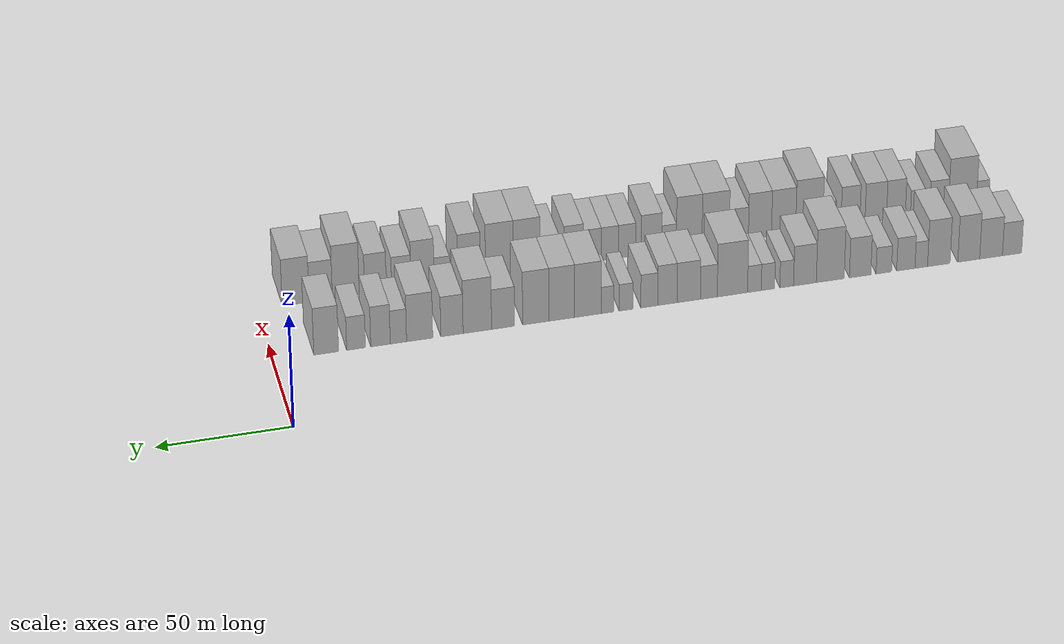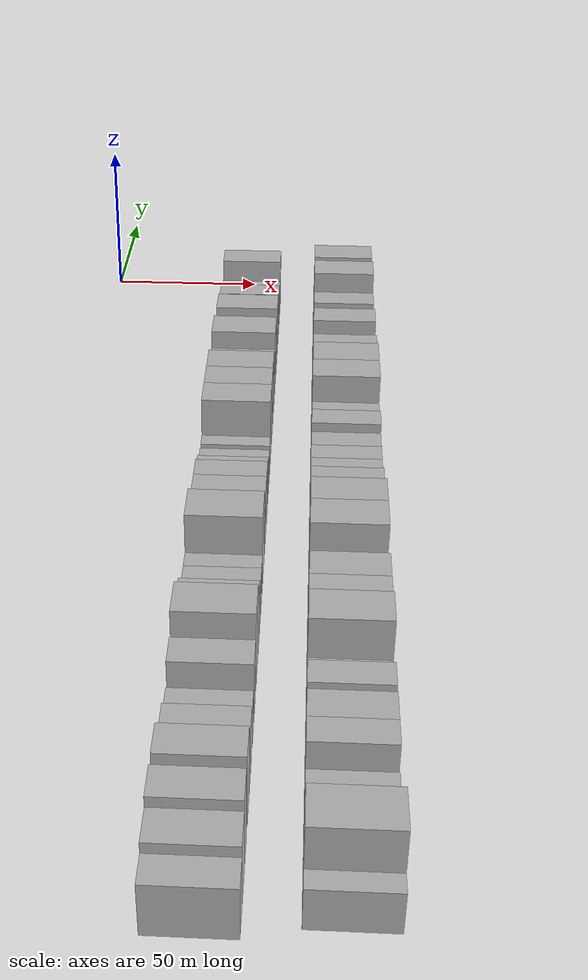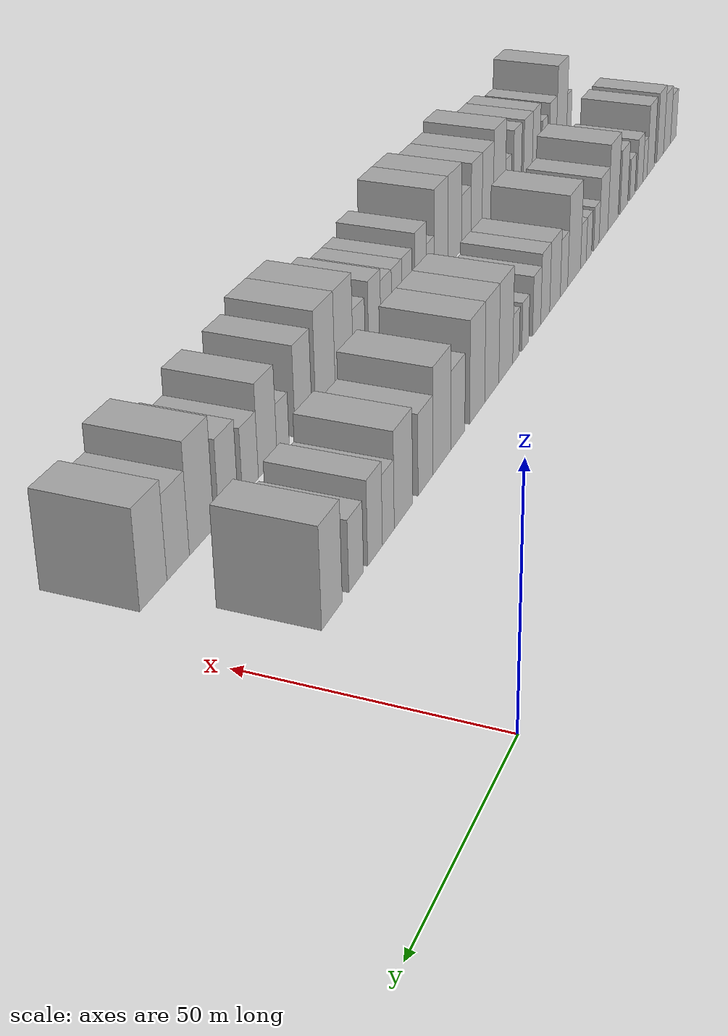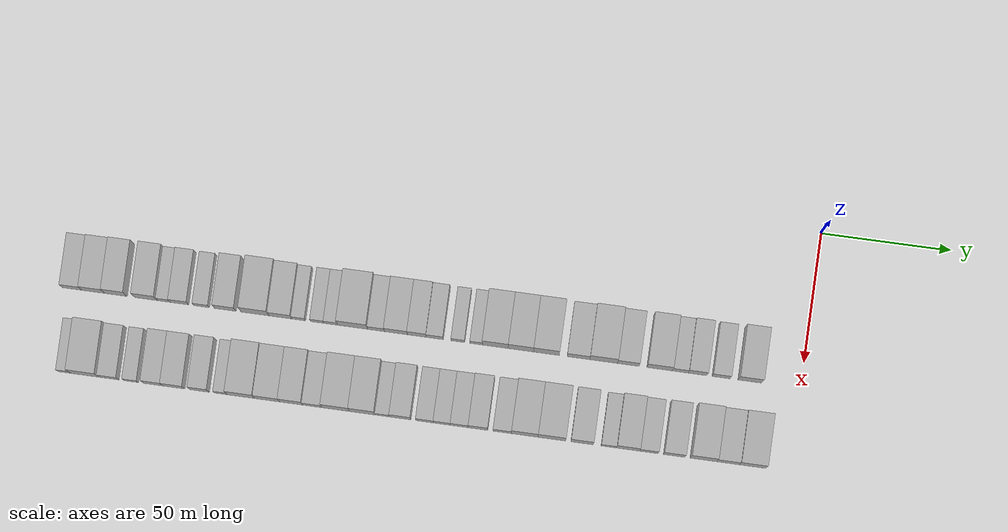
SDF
<sdf version="1.6">
 <world name="default">
  <model name="building_1">
   <static>1</static>
   <pose>50.0000 -280.2556 0 0.000000 0.000000 0.000000</pose>
   <link name="link">
    <pose>0 0 7.50 0 0 0</pose>
    <collision name="collision"><geometry><box><size>20.0000 7.4888 15.0000</size></box></geometry></collision>
    <visual name="visual">
     <cast_shadows>0</cast_shadows>
     <geometry><box><size>20.0000 7.4888 15.0000</size></box></geometry>
     <material>
      <script>
       <uri>model://HANNAS_wall/materials/scripts</uri>
       <uri>model://HANNAS_wall/materials/textures</uri>
       <name>vrc/HANNAS_wall</name>
      </script>
     </material>
    </visual>
   </link>
  </model>
  <model name="building_2">
   <static>1</static>
   <pose>50.0000 -272.0830 0 0.000000 0.000000 0.000000</pose>
   <link name="link">
    <pose>0 0 9.00 0 0 0</pose>
    <collision name="collision"><geometry><box><size>20.0000 8.8564 18.0000</size></box></geometry></collision>
    <visual name="visual">
     <cast_shadows>0</cast_shadows>
     <geometry><box><size>20.0000 8.8564 18.0000</size></box></geometry>
     <material>
      <script>
       <uri>model://HANNAS_wall/materials/scripts</uri>
       <uri>model://HANNAS_wall/materials/textures</uri>
       <name>vrc/HANNAS_wall</name>
      </script>
     </material>
    </visual>
   </link>
  </model>
  <model name="building_3">
   <static>1</static>
   <pose>50.0000 -263.3895 0 0.000000 0.000000 0.000000</pose>
   <link name="link">
    <pose>0 0 10.50 0 0 0</pose>
    <collision name="collision"><geometry><box><size>20.0000 8.5307 21.0000</size></box></geometry></collision>
    <visual name="visual">
     <cast_shadows>0</cast_shadows>
     <geometry><box><size>20.0000 8.5307 21.0000</size></box></geometry>
     <material>
      <script>
       <uri>model://HANNAS_wall/materials/scripts</uri>
       <uri>model://HANNAS_wall/materials/textures</uri>
       <name>vrc/HANNAS_wall</name>
      </script>
     </material>
    </visual>
   </link>
  </model>
  <model name="building_4">
   <static>1</static>
   <pose>50.0000 -251.7585 0 0.000000 0.000000 0.000000</pose>
   <link name="link">
    <pose>0 0 10.50 0 0 0</pose>
    <collision name="collision"><geometry><box><size>20.0000 8.7313 21.0000</size></box></geometry></collision>
    <visual name="visual">
     <cast_shadows>0</cast_shadows>
     <geometry><box><size>20.0000 8.7313 21.0000</size></box></geometry>
     <material>
      <script>
       <uri>model://HANNAS_wall/materials/scripts</uri>
       <uri>model://HANNAS_wall/materials/textures</uri>
       <name>vrc/HANNAS_wall</name>
      </script>
     </material>
    </visual>
   </link>
  </model>
  <model name="building_5">
   <static>1</static>
   <pose>50.0000 -244.9554 0 0.000000 0.000000 0.000000</pose>
   <link name="link">
    <pose>0 0 6.00 0 0 0</pose>
    <collision name="collision"><geometry><box><size>20.0000 4.8749 12.0000</size></box></geometry></collision>
    <visual name="visual">
     <cast_shadows>0</cast_shadows>
     <geometry><box><size>20.0000 4.8749 12.0000</size></box></geometry>
     <material>
      <script>
       <uri>model://HANNAS_wall/materials/scripts</uri>
       <uri>model://HANNAS_wall/materials/textures</uri>
       <name>vrc/HANNAS_wall</name>
      </script>
     </material>
    </visual>
   </link>
  </model>
  <model name="building_6">
   <static>1</static>
   <pose>50.0000 -238.9676 0 0.000000 0.000000 0.000000</pose>
   <link name="link">
    <pose>0 0 7.50 0 0 0</pose>
    <collision name="collision"><geometry><box><size>20.0000 7.1007 15.0000</size></box></geometry></collision>
    <visual name="visual">
     <cast_shadows>0</cast_shadows>
     <geometry><box><size>20.0000 7.1007 15.0000</size></box></geometry>
     <material>
      <script>
       <uri>model://HANNAS_wall/materials/scripts</uri>
       <uri>model://HANNAS_wall/materials/textures</uri>
       <name>vrc/HANNAS_wall</name>
      </script>
     </material>
    </visual>
   </link>
  </model>
  <model name="building_7">
   <static>1</static>
   <pose>50.0000 -230.4224 0 0.000000 0.000000 0.000000</pose>
   <link name="link">
    <pose>0 0 6.00 0 0 0</pose>
    <collision name="collision"><geometry><box><size>20.0000 5.9898 12.0000</size></box></geometry></collision>
    <visual name="visual">
     <cast_shadows>0</cast_shadows>
     <geometry><box><size>20.0000 5.9898 12.0000</size></box></geometry>
     <material>
      <script>
       <uri>model://HANNAS_wall/materials/scripts</uri>
       <uri>model://HANNAS_wall/materials/textures</uri>
       <name>vrc/HANNAS_wall</name>
      </script>
     </material>
    </visual>
   </link>
  </model>
  <model name="building_8">
   <static>1</static>
   <pose>50.0000 -221.2836 0 0.000000 0.000000 0.000000</pose>
   <link name="link">
    <pose>0 0 9.00 0 0 0</pose>
    <collision name="collision"><geometry><box><size>20.0000 8.2877 18.0000</size></box></geometry></collision>
    <visual name="visual">
     <cast_shadows>0</cast_shadows>
     <geometry><box><size>20.0000 8.2877 18.0000</size></box></geometry>
     <material>
      <script>
       <uri>model://HANNAS_wall/materials/scripts</uri>
       <uri>model://HANNAS_wall/materials/textures</uri>
       <name>vrc/HANNAS_wall</name>
      </script>
     </material>
    </visual>
   </link>
  </model>
  <model name="building_9">
   <static>1</static>
   <pose>50.0000 -209.7716 0 0.000000 0.000000 0.000000</pose>
   <link name="link">
    <pose>0 0 12.00 0 0 0</pose>
    <collision name="collision"><geometry><box><size>20.0000 10.7363 24.0000</size></box></geometry></collision>
    <visual name="visual">
     <cast_shadows>0</cast_shadows>
     <geometry><box><size>20.0000 10.7363 24.0000</size></box></geometry>
     <material>
      <script>
       <uri>model://HANNAS_wall/materials/scripts</uri>
       <uri>model://HANNAS_wall/materials/textures</uri>
       <name>vrc/HANNAS_wall</name>
      </script>
     </material>
    </visual>
   </link>
  </model>
  <model name="building_10">
   <static>1</static>
   <pose>50.0000 -200.0302 0 0.000000 0.000000 0.000000</pose>
   <link name="link">
    <pose>0 0 9.00 0 0 0</pose>
    <collision name="collision"><geometry><box><size>20.0000 8.7464 18.0000</size></box></geometry></collision>
    <visual name="visual">
     <cast_shadows>0</cast_shadows>
     <geometry><box><size>20.0000 8.7464 18.0000</size></box></geometry>
     <material>
      <script>
       <uri>model://HANNAS_wall/materials/scripts</uri>
       <uri>model://HANNAS_wall/materials/textures</uri>
       <name>vrc/HANNAS_wall</name>
      </script>
     </material>
    </visual>
   </link>
  </model>
  <model name="building_11">
   <static>1</static>
   <pose>50.0000 -193.0327 0 0.000000 0.000000 0.000000</pose>
   <link name="link">
    <pose>0 0 6.00 0 0 0</pose>
    <collision name="collision"><geometry><box><size>20.0000 5.2487 12.0000</size></box></geometry></collision>
    <visual name="visual">
     <cast_shadows>0</cast_shadows>
     <geometry><box><size>20.0000 5.2487 12.0000</size></box></geometry>
     <material>
      <script>
       <uri>model://HANNAS_wall/materials/scripts</uri>
       <uri>model://HANNAS_wall/materials/textures</uri>
       <name>vrc/HANNAS_wall</name>
      </script>
     </material>
    </visual>
   </link>
  </model>
  <model name="building_12">
   <static>1</static>
   <pose>50.0000 -185.8474 0 0.000000 0.000000 0.000000</pose>
   <link name="link">
    <pose>0 0 6.00 0 0 0</pose>
    <collision name="collision"><geometry><box><size>20.0000 5.1220 12.0000</size></box></geometry></collision>
    <visual name="visual">
     <cast_shadows>0</cast_shadows>
     <geometry><box><size>20.0000 5.1220 12.0000</size></box></geometry>
     <material>
      <script>
       <uri>model://HANNAS_wall/materials/scripts</uri>
       <uri>model://HANNAS_wall/materials/textures</uri>
       <name>vrc/HANNAS_wall</name>
      </script>
     </material>
    </visual>
   </link>
  </model>
  <model name="building_13">
   <static>1</static>
   <pose>50.0000 -180.6477 0 0.000000 0.000000 0.000000</pose>
   <link name="link">
    <pose>0 0 6.00 0 0 0</pose>
    <collision name="collision"><geometry><box><size>20.0000 5.2775 12.0000</size></box></geometry></collision>
    <visual name="visual">
     <cast_shadows>0</cast_shadows>
     <geometry><box><size>20.0000 5.2775 12.0000</size></box></geometry>
     <material>
      <script>
       <uri>model://HANNAS_wall/materials/scripts</uri>
       <uri>model://HANNAS_wall/materials/textures</uri>
       <name>vrc/HANNAS_wall</name>
      </script>
     </material>
    </visual>
   </link>
  </model>
  <model name="building_14">
   <static>1</static>
   <pose>50.0000 -172.2287 0 0.000000 0.000000 0.000000</pose>
   <link name="link">
    <pose>0 0 12.00 0 0 0</pose>
    <collision name="collision"><geometry><box><size>20.0000 11.5604 24.0000</size></box></geometry></collision>
    <visual name="visual">
     <cast_shadows>0</cast_shadows>
     <geometry><box><size>20.0000 11.5604 24.0000</size></box></geometry>
     <material>
      <script>
       <uri>model://HANNAS_wall/materials/scripts</uri>
       <uri>model://HANNAS_wall/materials/textures</uri>
       <name>vrc/HANNAS_wall</name>
      </script>
     </material>
    </visual>
   </link>
  </model>
  <model name="building_15">
   <static>1</static>
   <pose>50.0000 -163.2414 0 0.000000 0.000000 0.000000</pose>
   <link name="link">
    <pose>0 0 7.50 0 0 0</pose>
    <collision name="collision"><geometry><box><size>20.0000 6.4141 15.0000</size></box></geometry></collision>
    <visual name="visual">
     <cast_shadows>0</cast_shadows>
     <geometry><box><size>20.0000 6.4141 15.0000</size></box></geometry>
     <material>
      <script>
       <uri>model://HANNAS_wall/materials/scripts</uri>
       <uri>model://HANNAS_wall/materials/textures</uri>
       <name>vrc/HANNAS_wall</name>
      </script>
     </material>
    </visual>
   </link>
  </model>
  <model name="building_16">
   <static>1</static>
   <pose>50.0000 -155.5923 0 0.000000 0.000000 0.000000</pose>
   <link name="link">
    <pose>0 0 9.00 0 0 0</pose>
    <collision name="collision"><geometry><box><size>20.0000 8.8841 18.0000</size></box></geometry></collision>
    <visual name="visual">
     <cast_shadows>0</cast_shadows>
     <geometry><box><size>20.0000 8.8841 18.0000</size></box></geometry>
     <material>
      <script>
       <uri>model://HANNAS_wall/materials/scripts</uri>
       <uri>model://HANNAS_wall/materials/textures</uri>
       <name>vrc/HANNAS_wall</name>
      </script>
     </material>
    </visual>
   </link>
  </model>
  <model name="building_17">
   <static>1</static>
   <pose>50.0000 -147.4946 0 0.000000 0.000000 0.000000</pose>
   <link name="link">
    <pose>0 0 9.00 0 0 0</pose>
    <collision name="collision"><geometry><box><size>20.0000 7.3115 18.0000</size></box></geometry></collision>
    <visual name="visual">
     <cast_shadows>0</cast_shadows>
     <geometry><box><size>20.0000 7.3115 18.0000</size></box></geometry>
     <material>
      <script>
       <uri>model://HANNAS_wall/materials/scripts</uri>
       <uri>model://HANNAS_wall/materials/textures</uri>
       <name>vrc/HANNAS_wall</name>
      </script>
     </material>
    </visual>
   </link>
  </model>
  <model name="building_18">
   <static>1</static>
   <pose>50.0000 -140.6192 0 0.000000 0.000000 0.000000</pose>
   <link name="link">
    <pose>0 0 7.50 0 0 0</pose>
    <collision name="collision"><geometry><box><size>20.0000 6.4392 15.0000</size></box></geometry></collision>
    <visual name="visual">
     <cast_shadows>0</cast_shadows>
     <geometry><box><size>20.0000 6.4392 15.0000</size></box></geometry>
     <material>
      <script>
       <uri>model://HANNAS_wall/materials/scripts</uri>
       <uri>model://HANNAS_wall/materials/textures</uri>
       <name>vrc/HANNAS_wall</name>
      </script>
     </material>
    </visual>
   </link>
  </model>
  <model name="building_19">
   <static>1</static>
   <pose>50.0000 -131.7862 0 0.000000 0.000000 0.000000</pose>
   <link name="link">
    <pose>0 0 6.00 0 0 0</pose>
    <collision name="collision"><geometry><box><size>20.0000 5.2268 12.0000</size></box></geometry></collision>
    <visual name="visual">
     <cast_shadows>0</cast_shadows>
     <geometry><box><size>20.0000 5.2268 12.0000</size></box></geometry>
     <material>
      <script>
       <uri>model://HANNAS_wall/materials/scripts</uri>
       <uri>model://HANNAS_wall/materials/textures</uri>
       <name>vrc/HANNAS_wall</name>
      </script>
     </material>
    </visual>
   </link>
  </model>
  <model name="building_20">
   <static>1</static>
   <pose>50.0000 -124.7608 0 0.000000 0.000000 0.000000</pose>
   <link name="link">
    <pose>0 0 6.00 0 0 0</pose>
    <collision name="collision"><geometry><box><size>20.0000 4.8239 12.0000</size></box></geometry></collision>
    <visual name="visual">
     <cast_shadows>0</cast_shadows>
     <geometry><box><size>20.0000 4.8239 12.0000</size></box></geometry>
     <material>
      <script>
       <uri>model://HANNAS_wall/materials/scripts</uri>
       <uri>model://HANNAS_wall/materials/textures</uri>
       <name>vrc/HANNAS_wall</name>
      </script>
     </material>
    </visual>
   </link>
  </model>
  <model name="building_21">
   <static>1</static>
   <pose>50.0000 -117.3634 0 0.000000 0.000000 0.000000</pose>
   <link name="link">
    <pose>0 0 12.00 0 0 0</pose>
    <collision name="collision"><geometry><box><size>20.0000 9.9710 24.0000</size></box></geometry></collision>
    <visual name="visual">
     <cast_shadows>0</cast_shadows>
     <geometry><box><size>20.0000 9.9710 24.0000</size></box></geometry>
     <material>
      <script>
       <uri>model://HANNAS_wall/materials/scripts</uri>
       <uri>model://HANNAS_wall/materials/textures</uri>
       <name>vrc/HANNAS_wall</name>
      </script>
     </material>
    </visual>
   </link>
  </model>
  <model name="building_22">
   <static>1</static>
   <pose>50.0000 -107.5309 0 0.000000 0.000000 0.000000</pose>
   <link name="link">
    <pose>0 0 12.00 0 0 0</pose>
    <collision name="collision"><geometry><box><size>20.0000 9.6939 24.0000</size></box></geometry></collision>
    <visual name="visual">
     <cast_shadows>0</cast_shadows>
     <geometry><box><size>20.0000 9.6939 24.0000</size></box></geometry>
     <material>
      <script>
       <uri>model://HANNAS_wall/materials/scripts</uri>
       <uri>model://HANNAS_wall/materials/textures</uri>
       <name>vrc/HANNAS_wall</name>
      </script>
     </material>
    </visual>
   </link>
  </model>
  <model name="building_23">
   <static>1</static>
   <pose>50.0000 -97.7347 0 0.000000 0.000000 0.000000</pose>
   <link name="link">
    <pose>0 0 12.00 0 0 0</pose>
    <collision name="collision"><geometry><box><size>20.0000 9.8984 24.0000</size></box></geometry></collision>
    <visual name="visual">
     <cast_shadows>0</cast_shadows>
     <geometry><box><size>20.0000 9.8984 24.0000</size></box></geometry>
     <material>
      <script>
       <uri>model://HANNAS_wall/materials/scripts</uri>
       <uri>model://HANNAS_wall/materials/textures</uri>
       <name>vrc/HANNAS_wall</name>
      </script>
     </material>
    </visual>
   </link>
  </model>
  <model name="building_24">
   <static>1</static>
   <pose>50.0000 -85.4535 0 0.000000 0.000000 0.000000</pose>
   <link name="link">
    <pose>0 0 9.00 0 0 0</pose>
    <collision name="collision"><geometry><box><size>20.0000 8.6641 18.0000</size></box></geometry></collision>
    <visual name="visual">
     <cast_shadows>0</cast_shadows>
     <geometry><box><size>20.0000 8.6641 18.0000</size></box></geometry>
     <material>
      <script>
       <uri>model://HANNAS_wall/materials/scripts</uri>
       <uri>model://HANNAS_wall/materials/textures</uri>
       <name>vrc/HANNAS_wall</name>
      </script>
     </material>
    </visual>
   </link>
  </model>
  <model name="building_25">
   <static>1</static>
   <pose>50.0000 -75.7905 0 0.000000 0.000000 0.000000</pose>
   <link name="link">
    <pose>0 0 12.00 0 0 0</pose>
    <collision name="collision"><geometry><box><size>20.0000 10.6619 24.0000</size></box></geometry></collision>
    <visual name="visual">
     <cast_shadows>0</cast_shadows>
     <geometry><box><size>20.0000 10.6619 24.0000</size></box></geometry>
     <material>
      <script>
       <uri>model://HANNAS_wall/materials/scripts</uri>
       <uri>model://HANNAS_wall/materials/textures</uri>
       <name>vrc/HANNAS_wall</name>
      </script>
     </material>
    </visual>
   </link>
  </model>
  <model name="building_26">
   <static>1</static>
   <pose>50.0000 -66.2932 0 0.000000 0.000000 0.000000</pose>
   <link name="link">
    <pose>0 0 9.00 0 0 0</pose>
    <collision name="collision"><geometry><box><size>20.0000 8.3327 18.0000</size></box></geometry></collision>
    <visual name="visual">
     <cast_shadows>0</cast_shadows>
     <geometry><box><size>20.0000 8.3327 18.0000</size></box></geometry>
     <material>
      <script>
       <uri>model://HANNAS_wall/materials/scripts</uri>
       <uri>model://HANNAS_wall/materials/textures</uri>
       <name>vrc/HANNAS_wall</name>
      </script>
     </material>
    </visual>
   </link>
  </model>
  <model name="building_27">
   <static>1</static>
   <pose>50.0000 -54.2423 0 0.000000 0.000000 0.000000</pose>
   <link name="link">
    <pose>0 0 10.50 0 0 0</pose>
    <collision name="collision"><geometry><box><size>20.0000 9.7691 21.0000</size></box></geometry></collision>
    <visual name="visual">
     <cast_shadows>0</cast_shadows>
     <geometry><box><size>20.0000 9.7691 21.0000</size></box></geometry>
     <material>
      <script>
       <uri>model://HANNAS_wall/materials/scripts</uri>
       <uri>model://HANNAS_wall/materials/textures</uri>
       <name>vrc/HANNAS_wall</name>
      </script>
     </material>
    </visual>
   </link>
  </model>
  <model name="building_28">
   <static>1</static>
   <pose>50.0000 -46.3320 0 0.000000 0.000000 0.000000</pose>
   <link name="link">
    <pose>0 0 7.50 0 0 0</pose>
    <collision name="collision"><geometry><box><size>20.0000 6.0516 15.0000</size></box></geometry></collision>
    <visual name="visual">
     <cast_shadows>0</cast_shadows>
     <geometry><box><size>20.0000 6.0516 15.0000</size></box></geometry>
     <material>
      <script>
       <uri>model://HANNAS_wall/materials/scripts</uri>
       <uri>model://HANNAS_wall/materials/textures</uri>
       <name>vrc/HANNAS_wall</name>
      </script>
     </material>
    </visual>
   </link>
  </model>
  <model name="building_29">
   <static>1</static>
   <pose>50.0000 -39.6737 0 0.000000 0.000000 0.000000</pose>
   <link name="link">
    <pose>0 0 9.00 0 0 0</pose>
    <collision name="collision"><geometry><box><size>20.0000 7.2651 18.0000</size></box></geometry></collision>
    <visual name="visual">
     <cast_shadows>0</cast_shadows>
     <geometry><box><size>20.0000 7.2651 18.0000</size></box></geometry>
     <material>
      <script>
       <uri>model://HANNAS_wall/materials/scripts</uri>
       <uri>model://HANNAS_wall/materials/textures</uri>
       <name>vrc/HANNAS_wall</name>
      </script>
     </material>
    </visual>
   </link>
  </model>
  <model name="building_30">
   <static>1</static>
   <pose>50.0000 -30.5757 0 0.000000 0.000000 0.000000</pose>
   <link name="link">
    <pose>0 0 7.50 0 0 0</pose>
    <collision name="collision"><geometry><box><size>20.0000 6.9310 15.0000</size></box></geometry></collision>
    <visual name="visual">
     <cast_shadows>0</cast_shadows>
     <geometry><box><size>20.0000 6.9310 15.0000</size></box></geometry>
     <material>
      <script>
       <uri>model://HANNAS_wall/materials/scripts</uri>
       <uri>model://HANNAS_wall/materials/textures</uri>
       <name>vrc/HANNAS_wall</name>
      </script>
     </material>
    </visual>
   </link>
  </model>
  <model name="building_31">
   <static>1</static>
   <pose>50.0000 -19.5332 0 0.000000 0.000000 0.000000</pose>
   <link name="link">
    <pose>0 0 10.50 0 0 0</pose>
    <collision name="collision"><geometry><box><size>20.0000 9.1540 21.0000</size></box></geometry></collision>
    <visual name="visual">
     <cast_shadows>0</cast_shadows>
     <geometry><box><size>20.0000 9.1540 21.0000</size></box></geometry>
     <material>
      <script>
       <uri>model://HANNAS_wall/materials/scripts</uri>
       <uri>model://HANNAS_wall/materials/textures</uri>
       <name>vrc/HANNAS_wall</name>
      </script>
     </material>
    </visual>
   </link>
  </model>
  <model name="building_61">
   <static>1</static>
   <pose>82.0000 -278.5741 0 0.000000 0.000000 0.000000</pose>
   <link name="link">
    <pose>0 0 6.00 0 0 0</pose>
    <collision name="collision"><geometry><box><size>20.0000 4.8517 12.0000</size></box></geometry></collision>
    <visual name="visual">
     <cast_shadows>0</cast_shadows>
     <geometry><box><size>20.0000 4.8517 12.0000</size></box></geometry>
     <material>
      <script>
       <uri>model://HANNAS_wall/materials/scripts</uri>
       <uri>model://HANNAS_wall/materials/textures</uri>
       <name>vrc/HANNAS_wall</name>
      </script>
     </material>
    </visual>
   </link>
  </model>
  <model name="building_62">
   <static>1</static>
   <pose>82.0000 -270.6262 0 0.000000 0.000000 0.000000</pose>
   <link name="link">
    <pose>0 0 12.00 0 0 0</pose>
    <collision name="collision"><geometry><box><size>20.0000 11.0442 24.0000</size></box></geometry></collision>
    <visual name="visual">
     <cast_shadows>0</cast_shadows>
     <geometry><box><size>20.0000 11.0442 24.0000</size></box></geometry>
     <material>
      <script>
       <uri>model://HANNAS_wall/materials/scripts</uri>
       <uri>model://HANNAS_wall/materials/textures</uri>
       <name>vrc/HANNAS_wall</name>
      </script>
     </material>
    </visual>
   </link>
  </model>
  <model name="building_63">
   <static>1</static>
   <pose>82.0000 -261.4156 0 0.000000 0.000000 0.000000</pose>
   <link name="link">
    <pose>0 0 7.50 0 0 0</pose>
    <collision name="collision"><geometry><box><size>20.0000 7.3770 15.0000</size></box></geometry></collision>
    <visual name="visual">
     <cast_shadows>0</cast_shadows>
     <geometry><box><size>20.0000 7.3770 15.0000</size></box></geometry>
     <material>
      <script>
       <uri>model://HANNAS_wall/materials/scripts</uri>
       <uri>model://HANNAS_wall/materials/textures</uri>
       <name>vrc/HANNAS_wall</name>
      </script>
     </material>
    </visual>
   </link>
  </model>
  <model name="building_64">
   <static>1</static>
   <pose>82.0000 -252.9593 0 0.000000 0.000000 0.000000</pose>
   <link name="link">
    <pose>0 0 6.00 0 0 0</pose>
    <collision name="collision"><geometry><box><size>20.0000 5.5355 12.0000</size></box></geometry></collision>
    <visual name="visual">
     <cast_shadows>0</cast_shadows>
     <geometry><box><size>20.0000 5.5355 12.0000</size></box></geometry>
     <material>
      <script>
       <uri>model://HANNAS_wall/materials/scripts</uri>
       <uri>model://HANNAS_wall/materials/textures</uri>
       <name>vrc/HANNAS_wall</name>
      </script>
     </material>
    </visual>
   </link>
  </model>
  <model name="building_65">
   <static>1</static>
   <pose>82.0000 -244.4797 0 0.000000 0.000000 0.000000</pose>
   <link name="link">
    <pose>0 0 9.00 0 0 0</pose>
    <collision name="collision"><geometry><box><size>20.0000 7.4238 18.0000</size></box></geometry></collision>
    <visual name="visual">
     <cast_shadows>0</cast_shadows>
     <geometry><box><size>20.0000 7.4238 18.0000</size></box></geometry>
     <material>
      <script>
       <uri>model://HANNAS_wall/materials/scripts</uri>
       <uri>model://HANNAS_wall/materials/textures</uri>
       <name>vrc/HANNAS_wall</name>
      </script>
     </material>
    </visual>
   </link>
  </model>
  <model name="building_66">
   <static>1</static>
   <pose>82.0000 -236.5611 0 0.000000 0.000000 0.000000</pose>
   <link name="link">
    <pose>0 0 9.00 0 0 0</pose>
    <collision name="collision"><geometry><box><size>20.0000 8.4134 18.0000</size></box></geometry></collision>
    <visual name="visual">
     <cast_shadows>0</cast_shadows>
     <geometry><box><size>20.0000 8.4134 18.0000</size></box></geometry>
     <material>
      <script>
       <uri>model://HANNAS_wall/materials/scripts</uri>
       <uri>model://HANNAS_wall/materials/textures</uri>
       <name>vrc/HANNAS_wall</name>
      </script>
     </material>
    </visual>
   </link>
  </model>
  <model name="building_67">
   <static>1</static>
   <pose>82.0000 -226.6559 0 0.000000 0.000000 0.000000</pose>
   <link name="link">
    <pose>0 0 9.00 0 0 0</pose>
    <collision name="collision"><geometry><box><size>20.0000 7.3971 18.0000</size></box></geometry></collision>
    <visual name="visual">
     <cast_shadows>0</cast_shadows>
     <geometry><box><size>20.0000 7.3971 18.0000</size></box></geometry>
     <material>
      <script>
       <uri>model://HANNAS_wall/materials/scripts</uri>
       <uri>model://HANNAS_wall/materials/textures</uri>
       <name>vrc/HANNAS_wall</name>
      </script>
     </material>
    </visual>
   </link>
  </model>
  <model name="building_68">
   <static>1</static>
   <pose>82.0000 -218.3992 0 0.000000 0.000000 0.000000</pose>
   <link name="link">
    <pose>0 0 6.00 0 0 0</pose>
    <collision name="collision"><geometry><box><size>20.0000 5.1164 12.0000</size></box></geometry></collision>
    <visual name="visual">
     <cast_shadows>0</cast_shadows>
     <geometry><box><size>20.0000 5.1164 12.0000</size></box></geometry>
     <material>
      <script>
       <uri>model://HANNAS_wall/materials/scripts</uri>
       <uri>model://HANNAS_wall/materials/textures</uri>
       <name>vrc/HANNAS_wall</name>
      </script>
     </material>
    </visual>
   </link>
  </model>
  <model name="building_69">
   <static>1</static>
   <pose>82.0000 -210.5637 0 0.000000 0.000000 0.000000</pose>
   <link name="link">
    <pose>0 0 12.00 0 0 0</pose>
    <collision name="collision"><geometry><box><size>20.0000 10.5545 24.0000</size></box></geometry></collision>
    <visual name="visual">
     <cast_shadows>0</cast_shadows>
     <geometry><box><size>20.0000 10.5545 24.0000</size></box></geometry>
     <material>
      <script>
       <uri>model://HANNAS_wall/materials/scripts</uri>
       <uri>model://HANNAS_wall/materials/textures</uri>
       <name>vrc/HANNAS_wall</name>
      </script>
     </material>
    </visual>
   </link>
  </model>
  <model name="building_70">
   <static>1</static>
   <pose>82.0000 -200.5748 0 0.000000 0.000000 0.000000</pose>
   <link name="link">
    <pose>0 0 10.50 0 0 0</pose>
    <collision name="collision"><geometry><box><size>20.0000 9.4233 21.0000</size></box></geometry></collision>
    <visual name="visual">
     <cast_shadows>0</cast_shadows>
     <geometry><box><size>20.0000 9.4233 21.0000</size></box></geometry>
     <material>
      <script>
       <uri>model://HANNAS_wall/materials/scripts</uri>
       <uri>model://HANNAS_wall/materials/textures</uri>
       <name>vrc/HANNAS_wall</name>
      </script>
     </material>
    </visual>
   </link>
  </model>
  <model name="building_71">
   <static>1</static>
   <pose>82.0000 -191.3926 0 0.000000 0.000000 0.000000</pose>
   <link name="link">
    <pose>0 0 10.50 0 0 0</pose>
    <collision name="collision"><geometry><box><size>20.0000 8.9411 21.0000</size></box></geometry></collision>
    <visual name="visual">
     <cast_shadows>0</cast_shadows>
     <geometry><box><size>20.0000 8.9411 21.0000</size></box></geometry>
     <material>
      <script>
       <uri>model://HANNAS_wall/materials/scripts</uri>
       <uri>model://HANNAS_wall/materials/textures</uri>
       <name>vrc/HANNAS_wall</name>
      </script>
     </material>
    </visual>
   </link>
  </model>
  <model name="building_72">
   <static>1</static>
   <pose>82.0000 -183.1935 0 0.000000 0.000000 0.000000</pose>
   <link name="link">
    <pose>0 0 7.50 0 0 0</pose>
    <collision name="collision"><geometry><box><size>20.0000 7.4571 15.0000</size></box></geometry></collision>
    <visual name="visual">
     <cast_shadows>0</cast_shadows>
     <geometry><box><size>20.0000 7.4571 15.0000</size></box></geometry>
     <material>
      <script>
       <uri>model://HANNAS_wall/materials/scripts</uri>
       <uri>model://HANNAS_wall/materials/textures</uri>
       <name>vrc/HANNAS_wall</name>
      </script>
     </material>
    </visual>
   </link>
  </model>
  <model name="building_73">
   <static>1</static>
   <pose>82.0000 -174.2096 0 0.000000 0.000000 0.000000</pose>
   <link name="link">
    <pose>0 0 12.00 0 0 0</pose>
    <collision name="collision"><geometry><box><size>20.0000 10.5107 24.0000</size></box></geometry></collision>
    <visual name="visual">
     <cast_shadows>0</cast_shadows>
     <geometry><box><size>20.0000 10.5107 24.0000</size></box></geometry>
     <material>
      <script>
       <uri>model://HANNAS_wall/materials/scripts</uri>
       <uri>model://HANNAS_wall/materials/textures</uri>
       <name>vrc/HANNAS_wall</name>
      </script>
     </material>
    </visual>
   </link>
  </model>
  <model name="building_74">
   <static>1</static>
   <pose>82.0000 -164.0090 0 0.000000 0.000000 0.000000</pose>
   <link name="link">
    <pose>0 0 12.00 0 0 0</pose>
    <collision name="collision"><geometry><box><size>20.0000 9.8905 24.0000</size></box></geometry></collision>
    <visual name="visual">
     <cast_shadows>0</cast_shadows>
     <geometry><box><size>20.0000 9.8905 24.0000</size></box></geometry>
     <material>
      <script>
       <uri>model://HANNAS_wall/materials/scripts</uri>
       <uri>model://HANNAS_wall/materials/textures</uri>
       <name>vrc/HANNAS_wall</name>
      </script>
     </material>
    </visual>
   </link>
  </model>
  <model name="building_75">
   <static>1</static>
   <pose>82.0000 -156.2939 0 0.000000 0.000000 0.000000</pose>
   <link name="link">
    <pose>0 0 6.00 0 0 0</pose>
    <collision name="collision"><geometry><box><size>20.0000 5.5397 12.0000</size></box></geometry></collision>
    <visual name="visual">
     <cast_shadows>0</cast_shadows>
     <geometry><box><size>20.0000 5.5397 12.0000</size></box></geometry>
     <material>
      <script>
       <uri>model://HANNAS_wall/materials/scripts</uri>
       <uri>model://HANNAS_wall/materials/textures</uri>
       <name>vrc/HANNAS_wall</name>
      </script>
     </material>
    </visual>
   </link>
  </model>
  <model name="building_76">
   <static>1</static>
   <pose>82.0000 -149.4805 0 0.000000 0.000000 0.000000</pose>
   <link name="link">
    <pose>0 0 9.00 0 0 0</pose>
    <collision name="collision"><geometry><box><size>20.0000 8.0870 18.0000</size></box></geometry></collision>
    <visual name="visual">
     <cast_shadows>0</cast_shadows>
     <geometry><box><size>20.0000 8.0870 18.0000</size></box></geometry>
     <material>
      <script>
       <uri>model://HANNAS_wall/materials/scripts</uri>
       <uri>model://HANNAS_wall/materials/textures</uri>
       <name>vrc/HANNAS_wall</name>
      </script>
     </material>
    </visual>
   </link>
  </model>
  <model name="building_77">
   <static>1</static>
   <pose>82.0000 -140.0982 0 0.000000 0.000000 0.000000</pose>
   <link name="link">
    <pose>0 0 7.50 0 0 0</pose>
    <collision name="collision"><geometry><box><size>20.0000 6.6775 15.0000</size></box></geometry></collision>
    <visual name="visual">
     <cast_shadows>0</cast_shadows>
     <geometry><box><size>20.0000 6.6775 15.0000</size></box></geometry>
     <material>
      <script>
       <uri>model://HANNAS_wall/materials/scripts</uri>
       <uri>model://HANNAS_wall/materials/textures</uri>
       <name>vrc/HANNAS_wall</name>
      </script>
     </material>
    </visual>
   </link>
  </model>
  <model name="building_78">
   <static>1</static>
   <pose>82.0000 -133.5030 0 0.000000 0.000000 0.000000</pose>
   <link name="link">
    <pose>0 0 7.50 0 0 0</pose>
    <collision name="collision"><geometry><box><size>20.0000 6.5129 15.0000</size></box></geometry></collision>
    <visual name="visual">
     <cast_shadows>0</cast_shadows>
     <geometry><box><size>20.0000 6.5129 15.0000</size></box></geometry>
     <material>
      <script>
       <uri>model://HANNAS_wall/materials/scripts</uri>
       <uri>model://HANNAS_wall/materials/textures</uri>
       <name>vrc/HANNAS_wall</name>
      </script>
     </material>
    </visual>
   </link>
  </model>
  <model name="building_79">
   <static>1</static>
   <pose>82.0000 -126.8027 0 0.000000 0.000000 0.000000</pose>
   <link name="link">
    <pose>0 0 7.50 0 0 0</pose>
    <collision name="collision"><geometry><box><size>20.0000 6.8878 15.0000</size></box></geometry></collision>
    <visual name="visual">
     <cast_shadows>0</cast_shadows>
     <geometry><box><size>20.0000 6.8878 15.0000</size></box></geometry>
     <material>
      <script>
       <uri>model://HANNAS_wall/materials/scripts</uri>
       <uri>model://HANNAS_wall/materials/textures</uri>
       <name>vrc/HANNAS_wall</name>
      </script>
     </material>
    </visual>
   </link>
  </model>
  <model name="building_80">
   <static>1</static>
   <pose>82.0000 -119.6189 0 0.000000 0.000000 0.000000</pose>
   <link name="link">
    <pose>0 0 9.00 0 0 0</pose>
    <collision name="collision"><geometry><box><size>20.0000 7.4797 18.0000</size></box></geometry></collision>
    <visual name="visual">
     <cast_shadows>0</cast_shadows>
     <geometry><box><size>20.0000 7.4797 18.0000</size></box></geometry>
     <material>
      <script>
       <uri>model://HANNAS_wall/materials/scripts</uri>
       <uri>model://HANNAS_wall/materials/textures</uri>
       <name>vrc/HANNAS_wall</name>
      </script>
     </material>
    </visual>
   </link>
  </model>
  <model name="building_81">
   <static>1</static>
   <pose>82.0000 -110.3272 0 0.000000 0.000000 0.000000</pose>
   <link name="link">
    <pose>0 0 7.50 0 0 0</pose>
    <collision name="collision"><geometry><box><size>20.0000 7.1039 15.0000</size></box></geometry></collision>
    <visual name="visual">
     <cast_shadows>0</cast_shadows>
     <geometry><box><size>20.0000 7.1039 15.0000</size></box></geometry>
     <material>
      <script>
       <uri>model://HANNAS_wall/materials/scripts</uri>
       <uri>model://HANNAS_wall/materials/textures</uri>
       <name>vrc/HANNAS_wall</name>
      </script>
     </material>
    </visual>
   </link>
  </model>
  <model name="building_82">
   <static>1</static>
   <pose>82.0000 -101.6832 0 0.000000 0.000000 0.000000</pose>
   <link name="link">
    <pose>0 0 12.00 0 0 0</pose>
    <collision name="collision"><geometry><box><size>20.0000 10.1841 24.0000</size></box></geometry></collision>
    <visual name="visual">
     <cast_shadows>0</cast_shadows>
     <geometry><box><size>20.0000 10.1841 24.0000</size></box></geometry>
     <material>
      <script>
       <uri>model://HANNAS_wall/materials/scripts</uri>
       <uri>model://HANNAS_wall/materials/textures</uri>
       <name>vrc/HANNAS_wall</name>
      </script>
     </material>
    </visual>
   </link>
  </model>
  <model name="building_83">
   <static>1</static>
   <pose>82.0000 -91.2980 0 0.000000 0.000000 0.000000</pose>
   <link name="link">
    <pose>0 0 12.00 0 0 0</pose>
    <collision name="collision"><geometry><box><size>20.0000 10.5862 24.0000</size></box></geometry></collision>
    <visual name="visual">
     <cast_shadows>0</cast_shadows>
     <geometry><box><size>20.0000 10.5862 24.0000</size></box></geometry>
     <material>
      <script>
       <uri>model://HANNAS_wall/materials/scripts</uri>
       <uri>model://HANNAS_wall/materials/textures</uri>
       <name>vrc/HANNAS_wall</name>
      </script>
     </material>
    </visual>
   </link>
  </model>
  <model name="building_84">
   <static>1</static>
   <pose>82.0000 -79.7034 0 0.000000 0.000000 0.000000</pose>
   <link name="link">
    <pose>0 0 10.50 0 0 0</pose>
    <collision name="collision"><geometry><box><size>20.0000 8.6030 21.0000</size></box></geometry></collision>
    <visual name="visual">
     <cast_shadows>0</cast_shadows>
     <geometry><box><size>20.0000 8.6030 21.0000</size></box></geometry>
     <material>
      <script>
       <uri>model://HANNAS_wall/materials/scripts</uri>
       <uri>model://HANNAS_wall/materials/textures</uri>
       <name>vrc/HANNAS_wall</name>
      </script>
     </material>
    </visual>
   </link>
  </model>
  <model name="building_85">
   <static>1</static>
   <pose>82.0000 -69.4493 0 0.000000 0.000000 0.000000</pose>
   <link name="link">
    <pose>0 0 6.00 0 0 0</pose>
    <collision name="collision"><geometry><box><size>20.0000 5.9053 12.0000</size></box></geometry></collision>
    <visual name="visual">
     <cast_shadows>0</cast_shadows>
     <geometry><box><size>20.0000 5.9053 12.0000</size></box></geometry>
     <material>
      <script>
       <uri>model://HANNAS_wall/materials/scripts</uri>
       <uri>model://HANNAS_wall/materials/textures</uri>
       <name>vrc/HANNAS_wall</name>
      </script>
     </material>
    </visual>
   </link>
  </model>
  <model name="building_86">
   <static>1</static>
   <pose>82.0000 -62.1005 0 0.000000 0.000000 0.000000</pose>
   <link name="link">
    <pose>0 0 10.50 0 0 0</pose>
    <collision name="collision"><geometry><box><size>20.0000 8.7922 21.0000</size></box></geometry></collision>
    <visual name="visual">
     <cast_shadows>0</cast_shadows>
     <geometry><box><size>20.0000 8.7922 21.0000</size></box></geometry>
     <material>
      <script>
       <uri>model://HANNAS_wall/materials/scripts</uri>
       <uri>model://HANNAS_wall/materials/textures</uri>
       <name>vrc/HANNAS_wall</name>
      </script>
     </material>
    </visual>
   </link>
  </model>
  <model name="building_87">
   <static>1</static>
   <pose>82.0000 -54.0766 0 0.000000 0.000000 0.000000</pose>
   <link name="link">
    <pose>0 0 7.50 0 0 0</pose>
    <collision name="collision"><geometry><box><size>20.0000 7.2557 15.0000</size></box></geometry></collision>
    <visual name="visual">
     <cast_shadows>0</cast_shadows>
     <geometry><box><size>20.0000 7.2557 15.0000</size></box></geometry>
     <material>
      <script>
       <uri>model://HANNAS_wall/materials/scripts</uri>
       <uri>model://HANNAS_wall/materials/textures</uri>
       <name>vrc/HANNAS_wall</name>
      </script>
     </material>
    </visual>
   </link>
  </model>
  <model name="building_88">
   <static>1</static>
   <pose>82.0000 -44.3394 0 0.000000 0.000000 0.000000</pose>
   <link name="link">
    <pose>0 0 9.00 0 0 0</pose>
    <collision name="collision"><geometry><box><size>20.0000 8.2186 18.0000</size></box></geometry></collision>
    <visual name="visual">
     <cast_shadows>0</cast_shadows>
     <geometry><box><size>20.0000 8.2186 18.0000</size></box></geometry>
     <material>
      <script>
       <uri>model://HANNAS_wall/materials/scripts</uri>
       <uri>model://HANNAS_wall/materials/textures</uri>
       <name>vrc/HANNAS_wall</name>
      </script>
     </material>
    </visual>
   </link>
  </model>
  <model name="building_89">
   <static>1</static>
   <pose>82.0000 -33.1712 0 0.000000 0.000000 0.000000</pose>
   <link name="link">
    <pose>0 0 12.00 0 0 0</pose>
    <collision name="collision"><geometry><box><size>20.0000 10.1178 24.0000</size></box></geometry></collision>
    <visual name="visual">
     <cast_shadows>0</cast_shadows>
     <geometry><box><size>20.0000 10.1178 24.0000</size></box></geometry>
     <material>
      <script>
       <uri>model://HANNAS_wall/materials/scripts</uri>
       <uri>model://HANNAS_wall/materials/textures</uri>
       <name>vrc/HANNAS_wall</name>
      </script>
     </material>
    </visual>
   </link>
  </model>
  <model name="building_90">
   <static>1</static>
   <pose>82.0000 -23.7548 0 0.000000 0.000000 0.000000</pose>
   <link name="link">
    <pose>0 0 9.00 0 0 0</pose>
    <collision name="collision"><geometry><box><size>20.0000 8.7150 18.0000</size></box></geometry></collision>
    <visual name="visual">
     <cast_shadows>0</cast_shadows>
     <geometry><box><size>20.0000 8.7150 18.0000</size></box></geometry>
     <material>
      <script>
       <uri>model://HANNAS_wall/materials/scripts</uri>
       <uri>model://HANNAS_wall/materials/textures</uri>
       <name>vrc/HANNAS_wall</name>
      </script>
     </material>
    </visual>
   </link>
  </model>
  <model name="building_91">
   <static>1</static>
   <pose>82.0000 -14.3408 0 0.000000 0.000000 0.000000</pose>
   <link name="link">
    <pose>0 0 10.50 0 0 0</pose>
    <collision name="collision"><geometry><box><size>20.0000 10.1131 21.0000</size></box></geometry></collision>
    <visual name="visual">
     <cast_shadows>0</cast_shadows>
     <geometry><box><size>20.0000 10.1131 21.0000</size></box></geometry>
     <material>
      <script>
       <uri>model://HANNAS_wall/materials/scripts</uri>
       <uri>model://HANNAS_wall/materials/textures</uri>
       <name>vrc/HANNAS_wall</name>
      </script>
     </material>
    </visual>
   </link>
  </model>
 </world>
</sdf>
